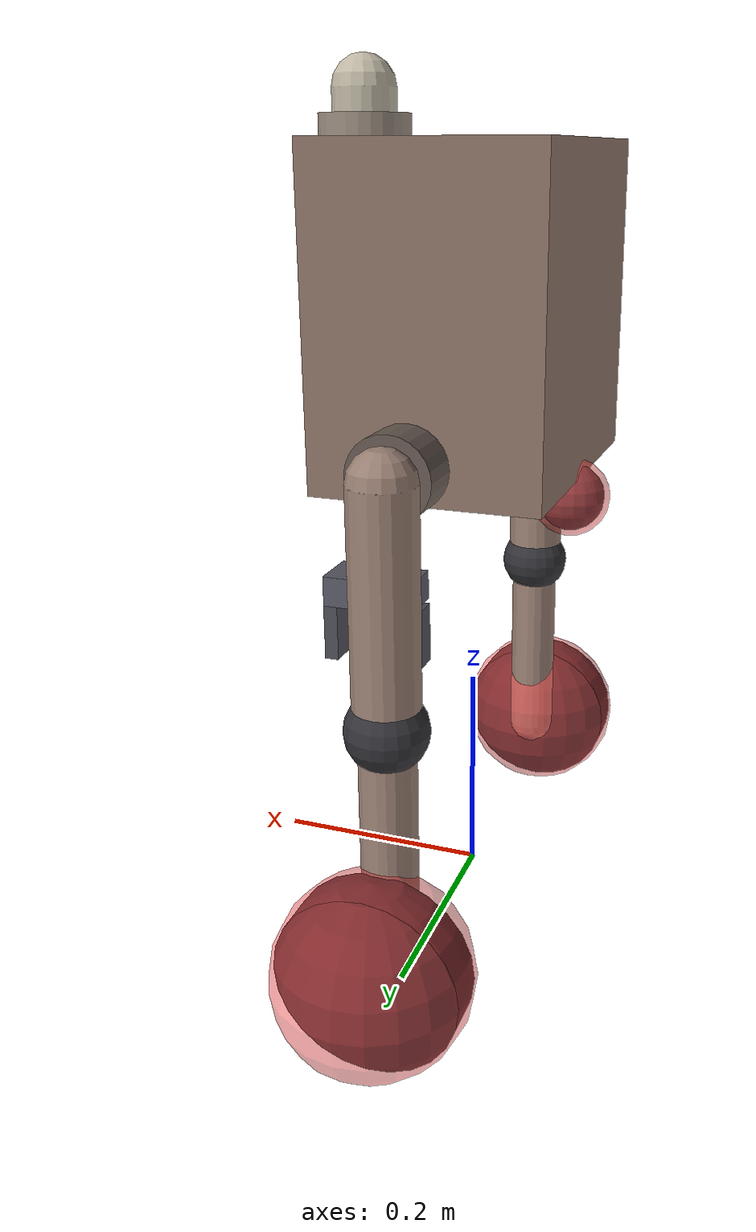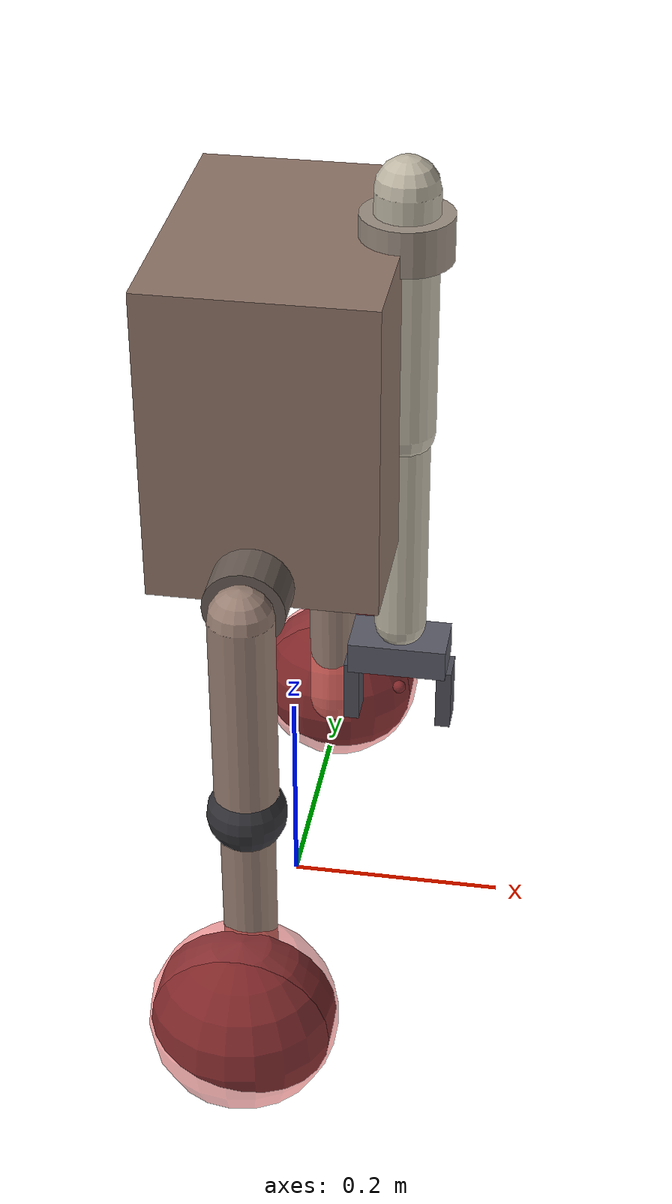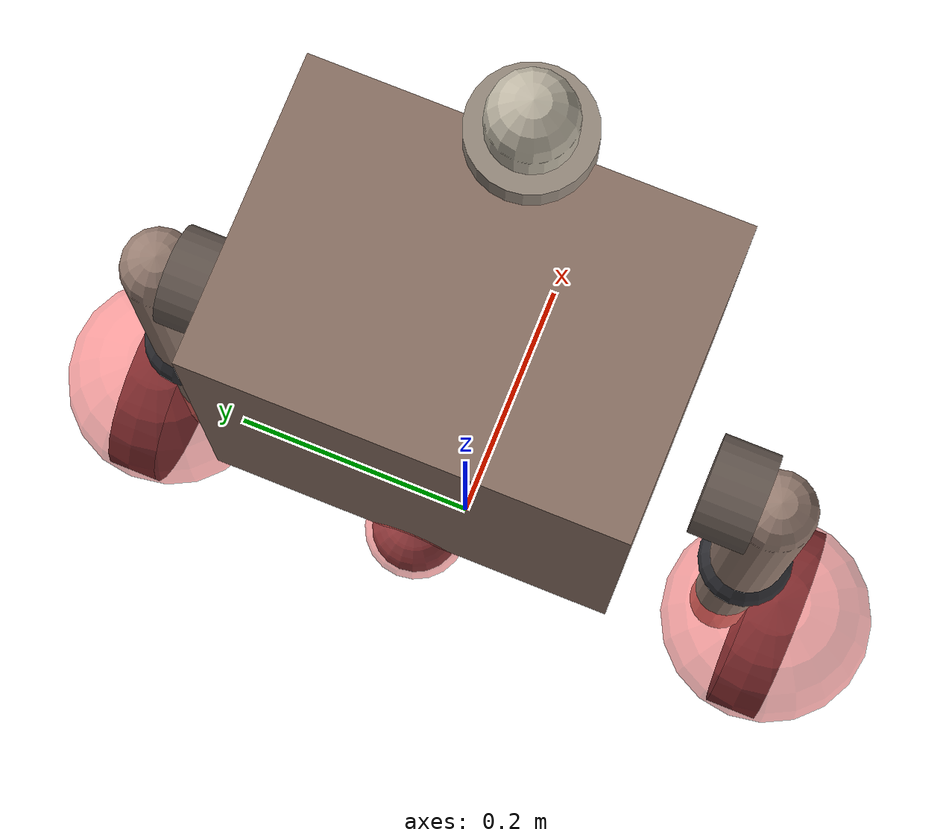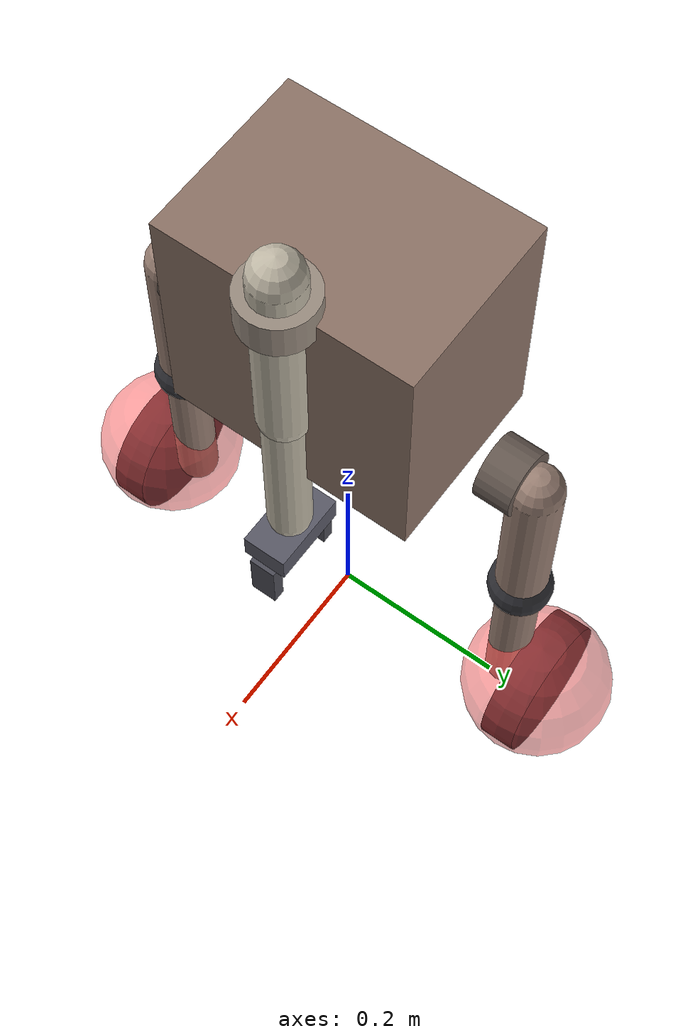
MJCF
<mujoco model="mobile_wheeled_biped_v2">
  <compiler angle="radian" autolimits="true" inertiafromgeom="true" />
  <option timestep="0.002" gravity="0 0 -9.81" integrator="implicitfast" />
  <default>
    <geom condim="3" friction="1.0 0.005 0.0001" solref="0.01 1" solimp="0.95 0.99 0.001" margin="0.0005" />
    <joint damping="0.5" armature="0.01" limited="true" />
    <position ctrllimited="true" forcelimited="true" />
    <velocity ctrllimited="true" forcelimited="true" />
  </default>
  <worldbody>
    <body name="torso" pos="0.00000 0.00000 0.55000">
      <freejoint name="root" />
      <geom name="torso_geom" type="box" size="0.10000 0.14000 0.14000" density="660.0" pos="0.00000 0.00000 0.00000" rgba="0.55 0.45 0.4 1" />
      <site name="torso_imu" pos="0.00000 0.00000 0.00000" size="0.0040" rgba="1 0.3 0.3 0.5" />
      <body name="left_hip" pos="0.00000 0.19000 -0.10000">
        <joint name="left_hip_pitch" type="hinge" axis="0.00000 1.00000 0.00000" range="-2.00000 2.00000" />
        <geom name="left_hip_geom" type="cylinder" size="0.03500 0.02000" density="900.0" euler="1.57080 0.00000 0.00000" rgba="0.4 0.35 0.32 1" />
        <body name="left_thigh" pos="0.00000 0.03000 0.00000">
          <geom name="left_thigh_geom" type="capsule" size="0.02800" fromto="0.00000 0.00000 -0.20000 0.00000 0.00000 0.00000" density="900.0" rgba="0.6 0.5 0.45 1" />
          <body name="left_shank" pos="0.00000 0.00000 -0.20000">
            <joint name="left_knee" type="hinge" axis="0.00000 1.00000 0.00000" range="0.00000 2.60000" />
            <geom name="left_shank_geom" type="capsule" size="0.02400" fromto="0.00000 0.00000 -0.20000 0.00000 0.00000 0.00000" density="900.0" rgba="0.6 0.5 0.45 1" />
            <geom name="left_knee_pad" type="sphere" size="0.03500" density="1100.0" pos="0.00000 0.00000 0.00000" rgba="0.2 0.2 0.22 1" friction="1.2 0.005 0.0001" />
            <body name="left_wheel" pos="0.00000 0.04000 -0.20000">
              <joint name="left_wheel_spin" type="hinge" axis="0.00000 1.00000 0.00000" limited="false" damping="0.05" />
              <geom name="left_wheel_geom" type="cylinder" size="0.08000 0.02000" density="1100.0" euler="1.57080 0.00000 0.00000" rgba="0.12 0.12 0.14 1" friction="1.1 0.005 0.0001" />
              <site name="left_wheel_touch" pos="0.00000 0.00000 0.00000" size="0.0850" rgba="1 0.3 0.3 0.5" />
            </body>
          </body>
        </body>
      </body>
      <body name="right_hip" pos="0.00000 -0.19000 -0.10000">
        <joint name="right_hip_pitch" type="hinge" axis="0.00000 1.00000 0.00000" range="-2.00000 2.00000" />
        <geom name="right_hip_geom" type="cylinder" size="0.03500 0.02000" density="900.0" euler="1.57080 0.00000 0.00000" rgba="0.4 0.35 0.32 1" />
        <body name="right_thigh" pos="0.00000 -0.03000 0.00000">
          <geom name="right_thigh_geom" type="capsule" size="0.02800" fromto="0.00000 0.00000 -0.20000 0.00000 0.00000 0.00000" density="900.0" rgba="0.6 0.5 0.45 1" />
          <body name="right_shank" pos="0.00000 0.00000 -0.20000">
            <joint name="right_knee" type="hinge" axis="0.00000 1.00000 0.00000" range="0.00000 2.60000" />
            <geom name="right_shank_geom" type="capsule" size="0.02400" fromto="0.00000 0.00000 -0.20000 0.00000 0.00000 0.00000" density="900.0" rgba="0.6 0.5 0.45 1" />
            <geom name="right_knee_pad" type="sphere" size="0.03500" density="1100.0" pos="0.00000 0.00000 0.00000" rgba="0.2 0.2 0.22 1" friction="1.2 0.005 0.0001" />
            <body name="right_wheel" pos="0.00000 -0.04000 -0.20000">
              <joint name="right_wheel_spin" type="hinge" axis="0.00000 1.00000 0.00000" limited="false" damping="0.05" />
              <geom name="right_wheel_geom" type="cylinder" size="0.08000 0.02000" density="1100.0" euler="1.57080 0.00000 0.00000" rgba="0.12 0.12 0.14 1" friction="1.1 0.005 0.0001" />
              <site name="right_wheel_touch" pos="0.00000 0.00000 0.00000" size="0.0850" rgba="1 0.3 0.3 0.5" />
            </body>
          </body>
        </body>
      </body>
      <geom name="tail_skid_geom" type="sphere" size="0.03000" density="1100.0" pos="-0.09000 0.00000 -0.16000" rgba="0.2 0.2 0.22 1" friction="1.2 0.005 0.0001" />
      <site name="tail_skid_touch" pos="-0.09000 0.00000 -0.16000" size="0.0350" rgba="1 0.3 0.3 0.5" />
      <body name="arm_base" pos="0.10000 0.00000 0.14000">
        <joint name="arm_yaw" type="hinge" axis="0.00000 0.00000 1.00000" range="-2.60000 2.60000" />
        <geom name="arm_base_geom" type="cylinder" size="0.04000 0.02000" density="900.0" euler="0.00000 0.00000 0.00000" rgba="0.6 0.55 0.5 1" />
        <body name="arm_link_0" pos="0.00000 0.00000 0.04000">
          <joint name="arm_joint_0" type="hinge" axis="0.00000 1.00000 0.00000" range="-2.60000 2.60000" />
          <geom name="arm_link_0_geom" type="capsule" size="0.02800" fromto="0.00000 0.00000 -0.22000 0.00000 0.00000 0.00000" density="900.0" rgba="0.75 0.72 0.65 1" />
          <body name="arm_link_1" pos="0.00000 0.00000 -0.22000">
            <joint name="arm_joint_1" type="hinge" axis="0.00000 1.00000 0.00000" range="-2.60000 2.60000" />
            <geom name="arm_link_1_geom" type="capsule" size="0.02380" fromto="0.00000 0.00000 -0.20000 0.00000 0.00000 0.00000" density="900.0" rgba="0.75 0.72 0.65 1" />
            <body name="arm_palm" pos="0.00000 0.00000 -0.23000">
              <geom name="arm_palm_geom" type="box" size="0.04500 0.02500 0.01500" density="900.0" pos="0.00000 0.00000 0.00000" rgba="0.35 0.35 0.4 1" />
              <body name="arm_finger_left" pos="0.04300 0.00000 -0.04500">
                <geom name="arm_finger_left_geom" type="box" size="0.00700 0.01500 0.03000" density="900.0" pos="0.00000 0.00000 0.00000" rgba="0.3 0.3 0.34 1" friction="1.4 0.005 0.0001" />
                <joint name="arm_grip_left" type="slide" axis="-1.00000 0.00000 0.00000" range="0.00000 0.03500" />
              </body>
              <body name="arm_finger_right" pos="-0.04300 0.00000 -0.04500">
                <geom name="arm_finger_right_geom" type="box" size="0.00700 0.01500 0.03000" density="900.0" pos="0.00000 0.00000 0.00000" rgba="0.3 0.3 0.34 1" friction="1.4 0.005 0.0001" />
                <joint name="arm_grip_right" type="slide" axis="1.00000 0.00000 0.00000" range="0.00000 0.03500" />
              </body>
              <site name="arm_grasp_centre" pos="0.00000 0.00000 -0.04500" size="0.0060" rgba="1 0.3 0.3 0.5" />
            </body>
          </body>
        </body>
      </body>
    </body>
  </worldbody>
  <actuator>
    <position name="left_hip_pitch_servo" joint="left_hip_pitch" kp="180.0" ctrlrange="-2.00000 2.00000" forcerange="-45.00000 45.00000" />
    <position name="left_knee_servo" joint="left_knee" kp="180.0" ctrlrange="0.00000 2.60000" forcerange="-45.00000 45.00000" />
    <velocity name="left_wheel_spin_drive" joint="left_wheel_spin" kv="1.50" ctrlrange="-25.00000 25.00000" forcerange="-12.00000 12.00000" />
    <position name="right_hip_pitch_servo" joint="right_hip_pitch" kp="180.0" ctrlrange="-2.00000 2.00000" forcerange="-45.00000 45.00000" />
    <position name="right_knee_servo" joint="right_knee" kp="180.0" ctrlrange="0.00000 2.60000" forcerange="-45.00000 45.00000" />
    <velocity name="right_wheel_spin_drive" joint="right_wheel_spin" kv="1.50" ctrlrange="-25.00000 25.00000" forcerange="-12.00000 12.00000" />
    <position name="arm_yaw_servo" joint="arm_yaw" kp="60.0" ctrlrange="-2.60000 2.60000" forcerange="-20.00000 20.00000" />
    <position name="arm_joint_0_servo" joint="arm_joint_0" kp="75.0" ctrlrange="-2.60000 2.60000" forcerange="-25.00000 25.00000" />
    <position name="arm_joint_1_servo" joint="arm_joint_1" kp="54.0" ctrlrange="-2.60000 2.60000" forcerange="-18.00000 18.00000" />
    <position name="arm_grip_left_servo" joint="arm_grip_left" kp="400.0" ctrlrange="0.00000 0.03500" forcerange="-40.00000 40.00000" />
    <position name="arm_grip_right_servo" joint="arm_grip_right" kp="400.0" ctrlrange="0.00000 0.03500" forcerange="-40.00000 40.00000" />
  </actuator>
  <sensor>
    <gyro name="torso_gyro" site="torso_imu" />
    <accelerometer name="torso_accel" site="torso_imu" />
    <framequat name="torso_orientation" objtype="site" objname="torso_imu" />
    <touch name="left_wheel_contact" site="left_wheel_touch" />
    <touch name="right_wheel_contact" site="right_wheel_touch" />
    <touch name="tail_skid_contact" site="tail_skid_touch" />
  </sensor>
</mujoco>
